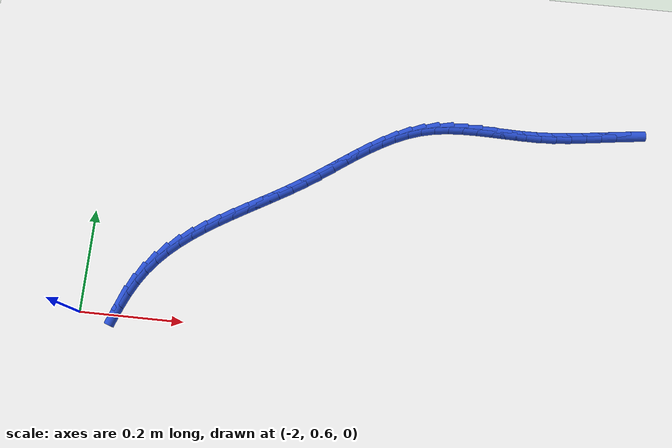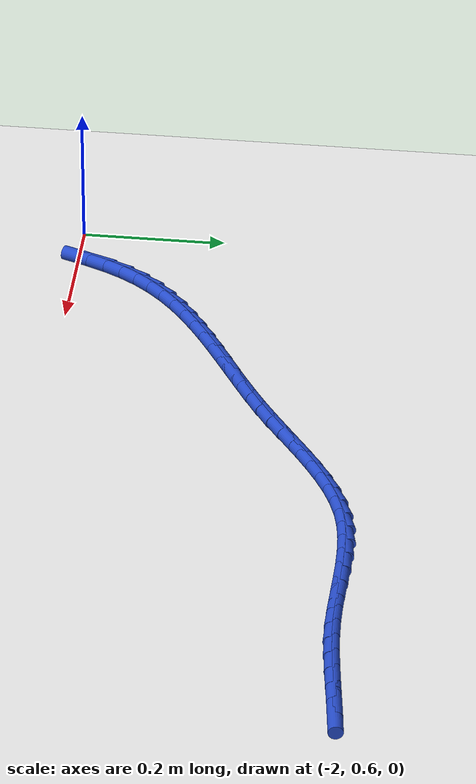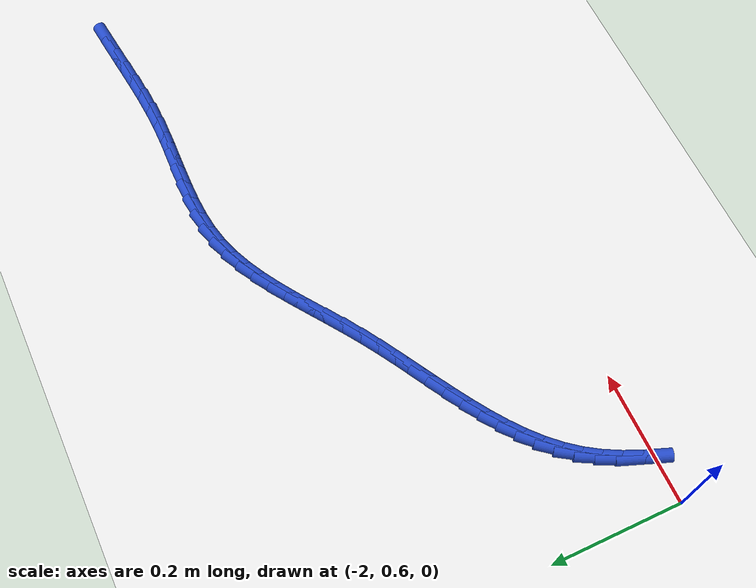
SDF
<sdf version="1.6">
 <world name="default">
  <model name="ground_plane">
   <static>1</static>
   <link name="link">
    <collision name="collision">
     <geometry><plane><normal>0 0 1</normal><size>100 100</size></plane></geometry>
     <surface><friction><ode><mu>100</mu><mu2>50</mu2></ode></friction></surface>
    </collision>
    <visual name="visual">
     <cast_shadows>0</cast_shadows>
     <geometry><plane><normal>0 0 1</normal><size>100 100</size></plane></geometry>
     <material>
      <script><uri>file://media/materials/scripts/gazebo.material</uri><name>Gazebo/WhiteGlow</name></script>
     </material>
    </visual>
   </link>
  </model>
  <model name="line">
   <link name="link_56">
    <pose>-0.9786144582975231 1.0517280309554844 0.01 0 1.57 0.12426843281583863</pose>
    <collision name="collision">
     <geometry><cylinder><radius>0.01</radius><length>0.08</length></cylinder></geometry>
    </collision>
    <visual name="visual">
     <material>
      <script><name>Gazebo/Blue</name><uri>file://media/materials/scripts/gazebo.material</uri></script>
     </material>
     <geometry><cylinder><radius>0.01</radius><length>0.08</length></cylinder></geometry>
    </visual>
   </link>
   <link name="link_57">
    <pose>-1.0075112452262078 1.0481184730014979 0.01 0 1.57 0.1302218783436842</pose>
    <collision name="collision">
     <geometry><cylinder><radius>0.01</radius><length>0.08</length></cylinder></geometry>
    </collision>
    <visual name="visual">
     <material>
      <script><name>Gazebo/Blue</name><uri>file://media/materials/scripts/gazebo.material</uri></script>
     </material>
     <geometry><cylinder><radius>0.01</radius><length>0.08</length></cylinder></geometry>
    </visual>
   </link>
   <link name="link_58">
    <pose>-1.0366053739595869 1.044308218757002 0.01 0 1.57 0.12558511363762795</pose>
    <collision name="collision">
     <geometry><cylinder><radius>0.01</radius><length>0.08</length></cylinder></geometry>
    </collision>
    <visual name="visual">
     <material>
      <script><name>Gazebo/Blue</name><uri>file://media/materials/scripts/gazebo.material</uri></script>
     </material>
     <geometry><cylinder><radius>0.01</radius><length>0.08</length></cylinder></geometry>
    </visual>
   </link>
   <link name="link_59">
    <pose>-1.065866957841463 1.0406139574726965 0.01 0 1.57 0.11048944051230561</pose>
    <collision name="collision">
     <geometry><cylinder><radius>0.01</radius><length>0.08</length></cylinder></geometry>
    </collision>
    <visual name="visual">
     <material>
      <script><name>Gazebo/Blue</name><uri>file://media/materials/scripts/gazebo.material</uri></script>
     </material>
     <geometry><cylinder><radius>0.01</radius><length>0.08</length></cylinder></geometry>
    </visual>
   </link>
   <link name="link_60">
    <pose>-1.0952661102156378 1.037352378399281 0.01 0 1.57 0.08493502554246739</pose>
    <collision name="collision">
     <geometry><cylinder><radius>0.01</radius><length>0.08</length></cylinder></geometry>
    </collision>
    <visual name="visual">
     <material>
      <script><name>Gazebo/Blue</name><uri>file://media/materials/scripts/gazebo.material</uri></script>
     </material>
     <geometry><cylinder><radius>0.01</radius><length>0.08</length></cylinder></geometry>
    </visual>
   </link>
   <link name="link_61">
    <pose>-1.1247729444259147 1.0348401707874557 0.01 0 1.57 0.04884336234892613</pose>
    <collision name="collision">
     <geometry><cylinder><radius>0.01</radius><length>0.08</length></cylinder></geometry>
    </collision>
    <visual name="visual">
     <material>
      <script><name>Gazebo/Blue</name><uri>file://media/materials/scripts/gazebo.material</uri></script>
     </material>
     <geometry><cylinder><radius>0.01</radius><length>0.08</length></cylinder></geometry>
    </visual>
   </link>
   <link name="link_62">
    <pose>-1.154357572230155 1.0333940078842734 0.01 0 1.57 0.007734150934706092</pose>
    <collision name="collision">
     <geometry><cylinder><radius>0.01</radius><length>0.08</length></cylinder></geometry>
    </collision>
    <visual name="visual">
     <material>
      <script><name>Gazebo/Blue</name><uri>file://media/materials/scripts/gazebo.material</uri></script>
     </material>
     <geometry><cylinder><radius>0.01</radius><length>0.08</length></cylinder></geometry>
    </visual>
   </link>
   <link name="link_63">
    <pose>-1.1839736931406617 1.0331649477677962 0.01 0 1.57 -0.019136045392431862</pose>
    <collision name="collision">
     <geometry><cylinder><radius>0.01</radius><length>0.08</length></cylinder></geometry>
    </collision>
    <visual name="visual">
     <material>
      <script><name>Gazebo/Blue</name><uri>file://media/materials/scripts/gazebo.material</uri></script>
     </material>
     <geometry><cylinder><radius>0.01</radius><length>0.08</length></cylinder></geometry>
    </visual>
   </link>
   <link name="link_64">
    <pose>-1.2135181569718128 1.03373038098878 0.01 0 1.57 -0.02769266900549229</pose>
    <collision name="collision">
     <geometry><cylinder><radius>0.01</radius><length>0.08</length></cylinder></geometry>
    </collision>
    <visual name="visual">
     <material>
      <script><name>Gazebo/Blue</name><uri>file://media/materials/scripts/gazebo.material</uri></script>
     </material>
     <geometry><cylinder><radius>0.01</radius><length>0.08</length></cylinder></geometry>
    </visual>
   </link>
   <link name="link_65">
    <pose>-1.2428755128457583 1.0345435724129768 0.01 0 1.57 -0.017696245295093664</pose>
    <collision name="collision">
     <geometry><cylinder><radius>0.01</radius><length>0.08</length></cylinder></geometry>
    </collision>
    <visual name="visual">
     <material>
      <script><name>Gazebo/Blue</name><uri>file://media/materials/scripts/gazebo.material</uri></script>
     </material>
     <geometry><cylinder><radius>0.01</radius><length>0.08</length></cylinder></geometry>
    </visual>
   </link>
   <link name="link_66">
    <pose>-1.2719303098846457 1.0350577869061361 0.01 0 1.57 0.011575417395932387</pose>
    <collision name="collision">
     <geometry><cylinder><radius>0.01</radius><length>0.08</length></cylinder></geometry>
    </collision>
    <visual name="visual">
     <material>
      <script><name>Gazebo/Blue</name><uri>file://media/materials/scripts/gazebo.material</uri></script>
     </material>
     <geometry><cylinder><radius>0.01</radius><length>0.08</length></cylinder></geometry>
    </visual>
   </link>
   <link name="link_67">
    <pose>-1.3005670972106225 1.0347262893340088 0.01 0 1.57 0.06126631450009764</pose>
    <collision name="collision">
     <geometry><cylinder><radius>0.01</radius><length>0.08</length></cylinder></geometry>
    </collision>
    <visual name="visual">
     <material>
      <script><name>Gazebo/Blue</name><uri>file://media/materials/scripts/gazebo.material</uri></script>
     </material>
     <geometry><cylinder><radius>0.01</radius><length>0.08</length></cylinder></geometry>
    </visual>
   </link>
   <link name="link_68">
    <pose>-1.3286704239458378 1.0330023445623455 0.01 0 1.57 0.1326423750290049</pose>
    <collision name="collision">
     <geometry><cylinder><radius>0.01</radius><length>0.08</length></cylinder></geometry>
    </collision>
    <visual name="visual">
     <material>
      <script><name>Gazebo/Blue</name><uri>file://media/materials/scripts/gazebo.material</uri></script>
     </material>
     <geometry><cylinder><radius>0.01</radius><length>0.08</length></cylinder></geometry>
    </visual>
   </link>
   <link name="link_69">
    <pose>-1.3561248392124394 1.0293392174568976 0.01 0 1.57 0.22629027265547483</pose>
    <collision name="collision">
     <geometry><cylinder><radius>0.01</radius><length>0.08</length></cylinder></geometry>
    </collision>
    <visual name="visual">
     <material>
      <script><name>Gazebo/Blue</name><uri>file://media/materials/scripts/gazebo.material</uri></script>
     </material>
     <geometry><cylinder><radius>0.01</radius><length>0.08</length></cylinder></geometry>
    </visual>
   </link>
   <link name="link_70">
    <pose>-1.3828159899018309 1.023194016830372 0.01 0 1.57 0.3291289269061262</pose>
    <collision name="collision">
     <geometry><cylinder><radius>0.01</radius><length>0.08</length></cylinder></geometry>
    </collision>
    <visual name="visual">
     <material>
      <script><name>Gazebo/Blue</name><uri>file://media/materials/scripts/gazebo.material</uri></script>
     </material>
     <geometry><cylinder><radius>0.01</radius><length>0.08</length></cylinder></geometry>
    </visual>
   </link>
   <link name="link_71">
    <pose>-1.4087215058885403 1.0143459389527039 0.01 0 1.57 0.4177531818009058</pose>
    <collision name="collision">
     <geometry><cylinder><radius>0.01</radius><length>0.08</length></cylinder></geometry>
    </collision>
    <visual name="visual">
     <material>
      <script><name>Gazebo/Blue</name><uri>file://media/materials/scripts/gazebo.material</uri></script>
     </material>
     <geometry><cylinder><radius>0.01</radius><length>0.08</length></cylinder></geometry>
    </visual>
   </link>
   <link name="link_72">
    <pose>-1.4339790652732687 1.0031346046903042 0.01 0 1.57 0.4890679003779238</pose>
    <collision name="collision">
     <geometry><cylinder><radius>0.01</radius><length>0.08</length></cylinder></geometry>
    </collision>
    <visual name="visual">
     <material>
      <script><name>Gazebo/Blue</name><uri>file://media/materials/scripts/gazebo.material</uri></script>
     </material>
     <geometry><cylinder><radius>0.01</radius><length>0.08</length></cylinder></geometry>
    </visual>
   </link>
   <link name="link_73">
    <pose>-1.4587423802896686 0.9899557800022617 0.01 0 1.57 0.5433311350675442</pose>
    <collision name="collision">
     <geometry><cylinder><radius>0.01</radius><length>0.08</length></cylinder></geometry>
    </collision>
    <visual name="visual">
     <material>
      <script><name>Gazebo/Blue</name><uri>file://media/materials/scripts/gazebo.material</uri></script>
     </material>
     <geometry><cylinder><radius>0.01</radius><length>0.08</length></cylinder></geometry>
    </visual>
   </link>
   <link name="link_74">
    <pose>-1.4831651631713947 0.9752052308476643 0.01 0 1.57 0.5813806939581277</pose>
    <collision name="collision">
     <geometry><cylinder><radius>0.01</radius><length>0.08</length></cylinder></geometry>
    </collision>
    <visual name="visual">
     <material>
      <script><name>Gazebo/Blue</name><uri>file://media/materials/scripts/gazebo.material</uri></script>
     </material>
     <geometry><cylinder><radius>0.01</radius><length>0.08</length></cylinder></geometry>
    </visual>
   </link>
   <link name="link_75">
    <pose>-1.5074011261521005 0.959278723185601 0.01 0 1.57 0.604171334089437</pose>
    <collision name="collision">
     <geometry><cylinder><radius>0.01</radius><length>0.08</length></cylinder></geometry>
    </collision>
    <visual name="visual">
     <material>
      <script><name>Gazebo/Blue</name><uri>file://media/materials/scripts/gazebo.material</uri></script>
     </material>
     <geometry><cylinder><radius>0.01</radius><length>0.08</length></cylinder></geometry>
    </visual>
   </link>
   <link name="link_76">
    <pose>-1.5316039814654412 0.94257202297516 0.01 0 1.57 0.6125090925634046</pose>
    <collision name="collision">
     <geometry><cylinder><radius>0.01</radius><length>0.08</length></cylinder></geometry>
    </collision>
    <visual name="visual">
     <material>
      <script><name>Gazebo/Blue</name><uri>file://media/materials/scripts/gazebo.material</uri></script>
     </material>
     <geometry><cylinder><radius>0.01</radius><length>0.08</length></cylinder></geometry>
    </visual>
   </link>
   <link name="link_77">
    <pose>-1.55592744134507 0.9254808961754293 0.01 0 1.57 0.6069327545550135</pose>
    <collision name="collision">
     <geometry><cylinder><radius>0.01</radius><length>0.08</length></cylinder></geometry>
    </collision>
    <visual name="visual">
     <material>
      <script><name>Gazebo/Blue</name><uri>file://media/materials/scripts/gazebo.material</uri></script>
     </material>
     <geometry><cylinder><radius>0.01</radius><length>0.08</length></cylinder></geometry>
    </visual>
   </link>
   <link name="link_78">
    <pose>-1.580525218024641 0.908401108745498 0.01 0 1.57 0.5876930272746574</pose>
    <collision name="collision">
     <geometry><cylinder><radius>0.01</radius><length>0.08</length></cylinder></geometry>
    </collision>
    <visual name="visual">
     <material>
      <script><name>Gazebo/Blue</name><uri>file://media/materials/scripts/gazebo.material</uri></script>
     </material>
     <geometry><cylinder><radius>0.01</radius><length>0.08</length></cylinder></geometry>
    </visual>
   </link>
   <link name="link_79">
    <pose>-1.6055510237375763 0.8917284266440806 0.01 0 1.57 0.5588095756889845</pose>
    <collision name="collision">
     <geometry><cylinder><radius>0.01</radius><length>0.08</length></cylinder></geometry>
    </collision>
    <visual name="visual">
     <material>
      <script><name>Gazebo/Blue</name><uri>file://media/materials/scripts/gazebo.material</uri></script>
     </material>
     <geometry><cylinder><radius>0.01</radius><length>0.08</length></cylinder></geometry>
    </visual>
   </link>
   <link name="link_80">
    <pose>-1.6310947202280879 0.8757561465502472 0.01 0 1.57 0.5360992534082527</pose>
    <collision name="collision">
     <geometry><cylinder><radius>0.01</radius><length>0.08</length></cylinder></geometry>
    </collision>
    <visual name="visual">
     <material>
      <script><name>Gazebo/Blue</name><uri>file://media/materials/scripts/gazebo.material</uri></script>
     </material>
     <geometry><cylinder><radius>0.01</radius><length>0.08</length></cylinder></geometry>
    </visual>
   </link>
   <link name="link_81">
    <pose>-1.6569919455619588 0.8603695789628464 0.01 0 1.57 0.5233857579922291</pose>
    <collision name="collision">
     <geometry><cylinder><radius>0.01</radius><length>0.08</length></cylinder></geometry>
    </collision>
    <visual name="visual">
     <material>
      <script><name>Gazebo/Blue</name><uri>file://media/materials/scripts/gazebo.material</uri></script>
     </material>
     <geometry><cylinder><radius>0.01</radius><length>0.08</length></cylinder></geometry>
    </visual>
   </link>
   <link name="link_82">
    <pose>-1.6830150750972592 0.8453525083913725 0.01 0 1.57 0.5206441597145824</pose>
    <collision name="collision">
     <geometry><cylinder><radius>0.01</radius><length>0.08</length></cylinder></geometry>
    </collision>
    <visual name="visual">
     <material>
      <script><name>Gazebo/Blue</name><uri>file://media/materials/scripts/gazebo.material</uri></script>
     </material>
     <geometry><cylinder><radius>0.01</radius><length>0.08</length></cylinder></geometry>
    </visual>
   </link>
   <link name="link_83">
    <pose>-1.7089364841920591 0.8304887193453189 0.01 0 1.57 0.5280166922922332</pose>
    <collision name="collision">
     <geometry><cylinder><radius>0.01</radius><length>0.08</length></cylinder></geometry>
    </collision>
    <visual name="visual">
     <material>
      <script><name>Gazebo/Blue</name><uri>file://media/materials/scripts/gazebo.material</uri></script>
     </material>
     <geometry><cylinder><radius>0.01</radius><length>0.08</length></cylinder></geometry>
    </visual>
   </link>
   <link name="link_84">
    <pose>-1.734528548204429 0.8155619963341798 0.01 0 1.57 0.5458299677489434</pose>
    <collision name="collision">
     <geometry><cylinder><radius>0.01</radius><length>0.08</length></cylinder></geometry>
    </collision>
    <visual name="visual">
     <material>
      <script><name>Gazebo/Blue</name><uri>file://media/materials/scripts/gazebo.material</uri></script>
     </material>
     <geometry><cylinder><radius>0.01</radius><length>0.08</length></cylinder></geometry>
    </visual>
   </link>
   <link name="link_85">
    <pose>-1.759563642492439 0.8003561238674489 0.01 0 1.57 0.5745878126824921</pose>
    <collision name="collision">
     <geometry><cylinder><radius>0.01</radius><length>0.08</length></cylinder></geometry>
    </collision>
    <visual name="visual">
     <material>
      <script><name>Gazebo/Blue</name><uri>file://media/materials/scripts/gazebo.material</uri></script>
     </material>
     <geometry><cylinder><radius>0.01</radius><length>0.08</length></cylinder></geometry>
    </visual>
   </link>
   <link name="link_86">
    <pose>-1.7838141424141598 0.7846548864546206 0.01 0 1.57 0.6149307411881753</pose>
    <collision name="collision">
     <geometry><cylinder><radius>0.01</radius><length>0.08</length></cylinder></geometry>
    </collision>
    <visual name="visual">
     <material>
      <script><name>Gazebo/Blue</name><uri>file://media/materials/scripts/gazebo.material</uri></script>
     </material>
     <geometry><cylinder><radius>0.01</radius><length>0.08</length></cylinder></geometry>
    </visual>
   </link>
   <link name="link_87">
    <pose>-1.8070524233276604 0.7682420686051881 0.01 0 1.57 0.6675448201636971</pose>
    <collision name="collision">
     <geometry><cylinder><radius>0.01</radius><length>0.08</length></cylinder></geometry>
    </collision>
    <visual name="visual">
     <material>
      <script><name>Gazebo/Blue</name><uri>file://media/materials/scripts/gazebo.material</uri></script>
     </material>
     <geometry><cylinder><radius>0.01</radius><length>0.08</length></cylinder></geometry>
    </visual>
   </link>
   <link name="link_88">
    <pose>-1.8290508605910119 0.7509014548286455 0.01 0 1.57 0.7329967978076971</pose>
    <collision name="collision">
     <geometry><cylinder><radius>0.01</radius><length>0.08</length></cylinder></geometry>
    </collision>
    <visual name="visual">
     <material>
      <script><name>Gazebo/Blue</name><uri>file://media/materials/scripts/gazebo.material</uri></script>
     </material>
     <geometry><cylinder><radius>0.01</radius><length>0.08</length></cylinder></geometry>
    </visual>
   </link>
   <link name="link_89">
    <pose>-1.8495818295622841 0.732416829634487 0.01 0 1.57 0.81147697232508</pose>
    <collision name="collision">
     <geometry><cylinder><radius>0.01</radius><length>0.08</length></cylinder></geometry>
    </collision>
    <visual name="visual">
     <material>
      <script><name>Gazebo/Blue</name><uri>file://media/materials/scripts/gazebo.material</uri></script>
     </material>
     <geometry><cylinder><radius>0.01</radius><length>0.08</length></cylinder></geometry>
    </visual>
   </link>
   <link name="link_90">
    <pose>-1.8684177055995486 0.7125719775322062 0.01 0 1.57 0.9024606038017882</pose>
    <collision name="collision">
     <geometry><cylinder><radius>0.01</radius><length>0.08</length></cylinder></geometry>
    </collision>
    <visual name="visual">
     <material>
      <script><name>Gazebo/Blue</name><uri>file://media/materials/scripts/gazebo.material</uri></script>
     </material>
     <geometry><cylinder><radius>0.01</radius><length>0.08</length></cylinder></geometry>
    </visual>
   </link>
   <link name="link_91">
    <pose>-1.8853308640608732 0.6911506830312972 0.01 0 1.57 1.0012215900111279</pose>
    <collision name="collision">
     <geometry><cylinder><radius>0.01</radius><length>0.08</length></cylinder></geometry>
    </collision>
    <visual name="visual">
     <material>
      <script><name>Gazebo/Blue</name><uri>file://media/materials/scripts/gazebo.material</uri></script>
     </material>
     <geometry><cylinder><radius>0.01</radius><length>0.08</length></cylinder></geometry>
    </visual>
   </link>
   <link name="link_92">
    <pose>-1.9001584953622972 0.6679958497990137 0.01 0 1.57 1.0888903907287637</pose>
    <collision name="collision">
     <geometry><cylinder><radius>0.01</radius><length>0.08</length></cylinder></geometry>
    </collision>
    <visual name="visual">
     <material>
      <script><name>Gazebo/Blue</name><uri>file://media/materials/scripts/gazebo.material</uri></script>
     </material>
     <geometry><cylinder><radius>0.01</radius><length>0.08</length></cylinder></geometry>
    </visual>
   </link>
   <link name="link_93">
    <pose>-1.913090095846663 0.6432717270405144 0.01 0 1.57 1.1596696046251243</pose>
    <collision name="collision">
     <geometry><cylinder><radius>0.01</radius><length>0.08</length></cylinder></geometry>
    </collision>
    <visual name="visual">
     <material>
      <script><name>Gazebo/Blue</name><uri>file://media/materials/scripts/gazebo.material</uri></script>
     </material>
     <geometry><cylinder><radius>0.01</radius><length>0.08</length></cylinder></geometry>
    </visual>
   </link>
   <link name="link_94">
    <pose>-1.9244342914416412 0.6172512245244146 0.01 0 1.57 1.2144899923563588</pose>
    <collision name="collision">
     <geometry><cylinder><radius>0.01</radius><length>0.08</length></cylinder></geometry>
    </collision>
    <visual name="visual">
     <material>
      <script><name>Gazebo/Blue</name><uri>file://media/materials/scripts/gazebo.material</uri></script>
     </material>
     <geometry><cylinder><radius>0.01</radius><length>0.08</length></cylinder></geometry>
    </visual>
   </link>
  </model>
 </world>
</sdf>
